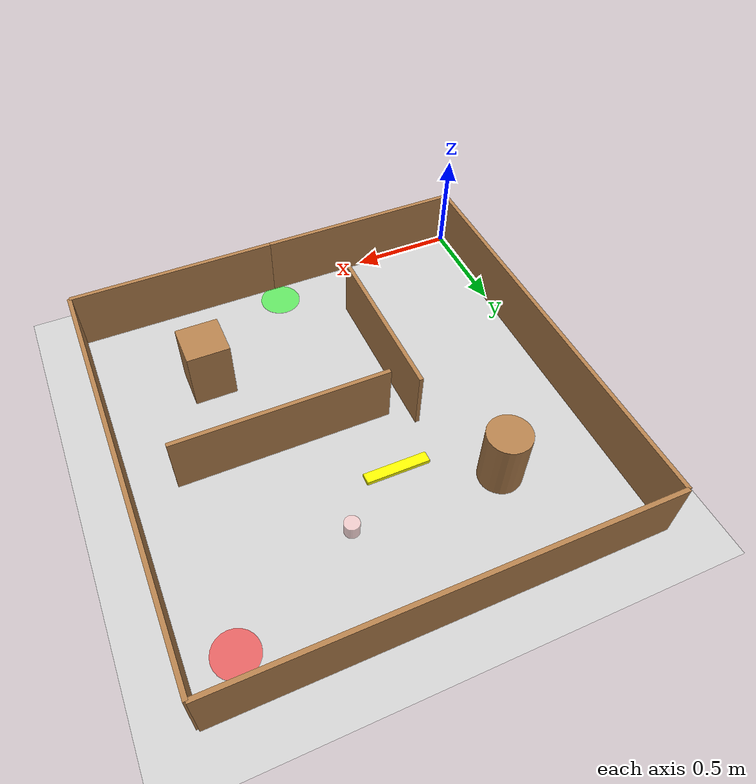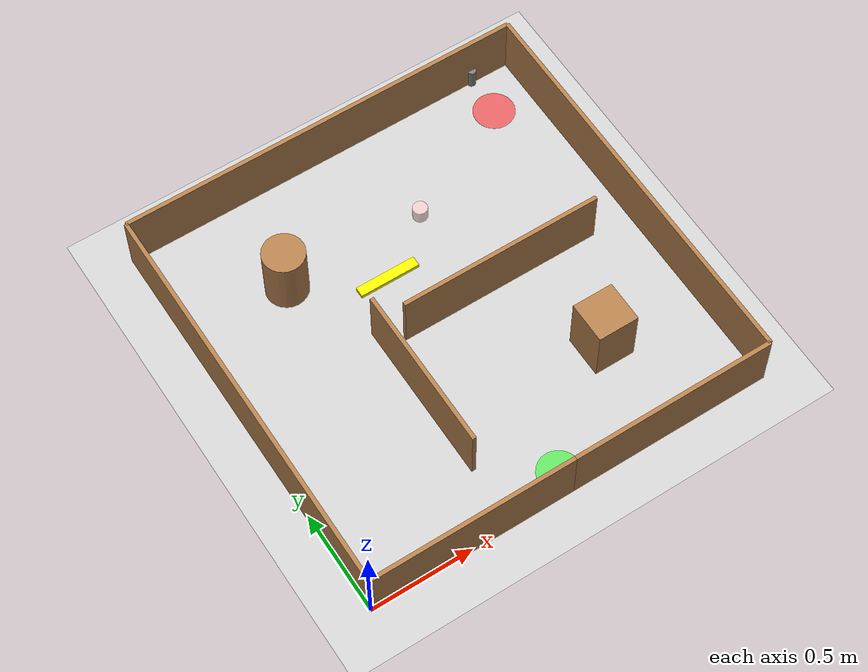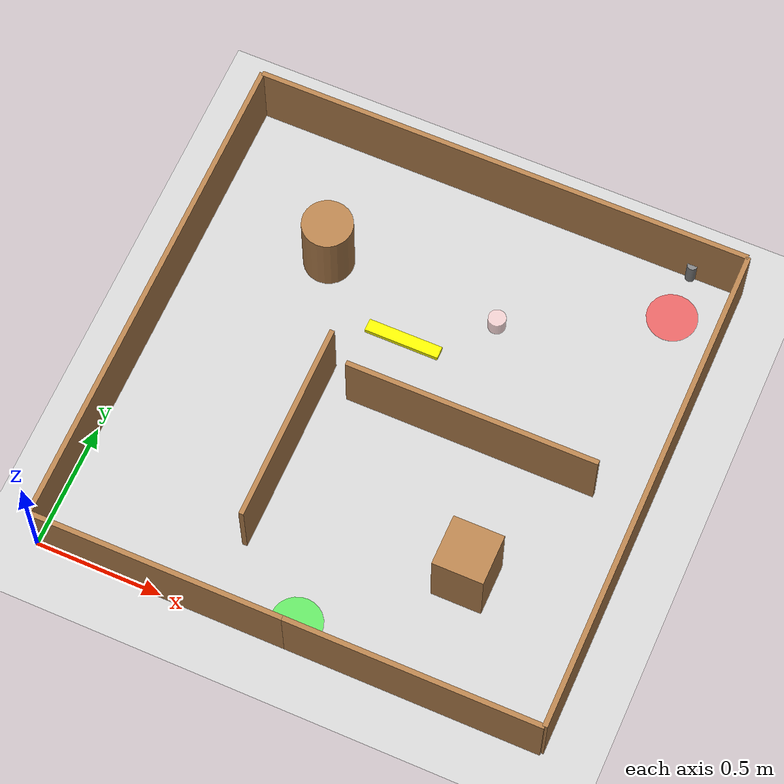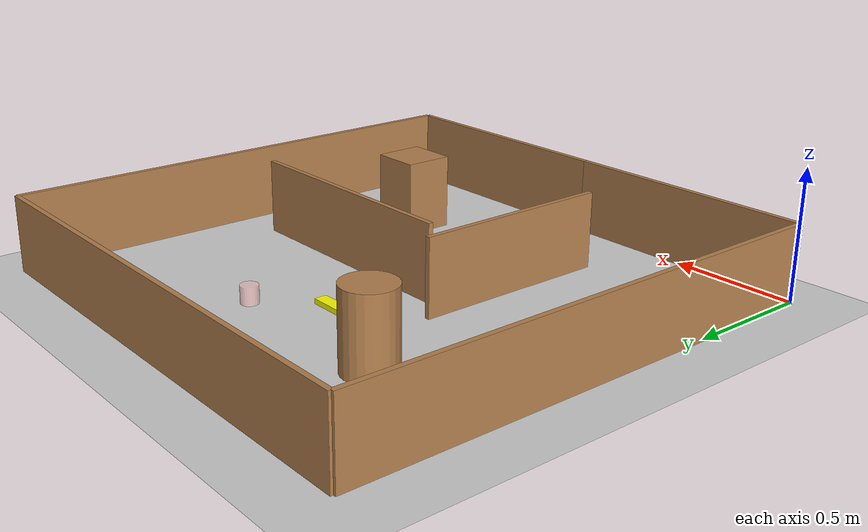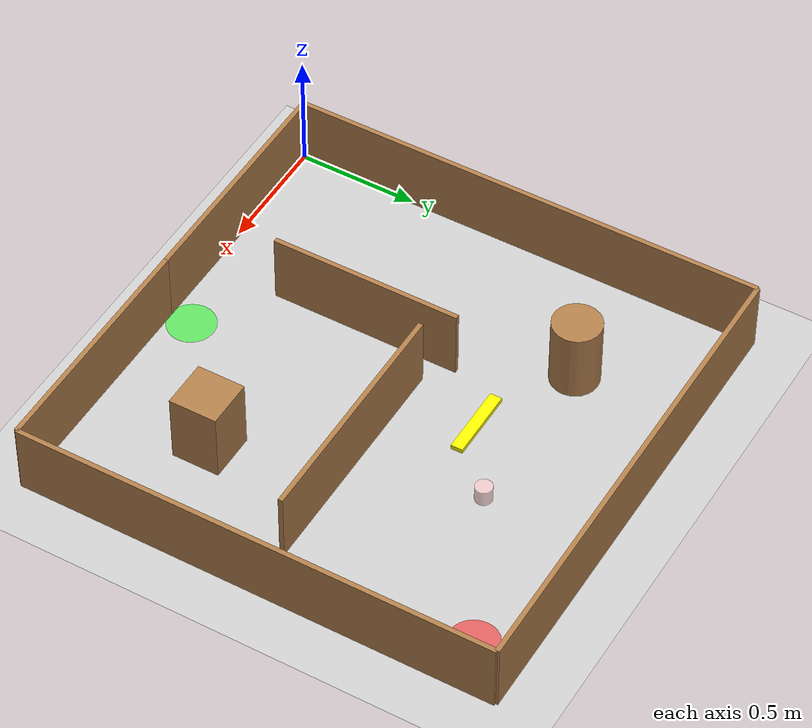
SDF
<?xml version="1.0" ?>
<sdf version="1.8">
  <world name="simple_maze">
    <!-- Physics configuration -->
    <physics name="1ms" type="ignored">
      <max_step_size>0.001</max_step_size>
      <real_time_factor>1.0</real_time_factor>
      <real_time_update_rate>1000</real_time_update_rate>
    </physics>

    <!-- Global light source -->
    <light type="directional" name="sun">
      <cast_shadows>true</cast_shadows>
      <pose>0 0 10 0 0 0</pose>
      <diffuse>0.8 0.8 0.8 1</diffuse>
      <specular>0.2 0.2 0.2 1</specular>
    </light>

    <!-- Ground Plane -->
    <model name="ground_plane">
      <static>true</static>
      <link name="link">
        <collision name="collision">
          <geometry>
            <plane>
              <normal>0 0 1</normal>
              <size>5 5</size>
            </plane>
          </geometry>
        </collision>
        <visual name="visual">
          <geometry>
            <plane>
              <normal>0 0 1</normal>
              <size>5 5</size>
            </plane>
          </geometry>
          <material>
            <ambient>0.8 0.8 0.8 1</ambient>
            <diffuse>0.8 0.8 0.8 1</diffuse>
            <specular>0.8 0.8 0.8 1</specular>
          </material>
        </visual>
      </link>
    </model>

    <!-- Outer boundary walls -->
    <!-- North Wall -->
    <model name="outer_wall_north">
      <static>true</static>
      <link name="link">
        <pose>1.0 2.0 0.15 0 0 0</pose>
        <collision name="collision">
          <geometry>
            <box>
              <size>2.0 0.02 0.3</size>
            </box>
          </geometry>
        </collision>
        <visual name="visual">
          <geometry>
            <box>
              <size>2.0 0.02 0.3</size>
            </box>
          </geometry>
          <material>
            <ambient>0.7 0.5 0.3 1</ambient>
            <diffuse>0.7 0.5 0.3 1</diffuse>
          </material>
        </visual>
      </link>
    </model>

    <!-- East Wall -->
    <model name="outer_wall_east">
      <static>true</static>
      <link name="link">
        <pose>2.0 1.0 0.15 0 0 0</pose>
        <collision name="collision">
          <geometry>
            <box>
              <size>0.02 2.0 0.3</size>
            </box>
          </geometry>
        </collision>
        <visual name="visual">
          <geometry>
            <box>
              <size>0.02 2.0 0.3</size>
            </box>
          </geometry>
          <material>
            <ambient>0.7 0.5 0.3 1</ambient>
            <diffuse>0.7 0.5 0.3 1</diffuse>
          </material>
        </visual>
      </link>
    </model>

    <!-- South Wall with Gap for Start -->
    <model name="outer_wall_south_left">
      <static>true</static>
      <link name="link">
        <pose>0.5 0.0 0.15 0 0 0</pose>
        <collision name="collision">
          <geometry>
            <box>
              <size>1.0 0.02 0.3</size>
            </box>
          </geometry>
        </collision>
        <visual name="visual">
          <geometry>
            <box>
              <size>1.0 0.02 0.3</size>
            </box>
          </geometry>
          <material>
            <ambient>0.7 0.5 0.3 1</ambient>
            <diffuse>0.7 0.5 0.3 1</diffuse>
          </material>
        </visual>
      </link>
    </model>

    <model name="outer_wall_south_right">
      <static>true</static>
      <link name="link">
        <pose>1.5 0.0 0.15 0 0 0</pose>
        <collision name="collision">
          <geometry>
            <box>
              <size>1.0 0.02 0.3</size>
            </box>
          </geometry>
        </collision>
        <visual name="visual">
          <geometry>
            <box>
              <size>1.0 0.02 0.3</size>
            </box>
          </geometry>
          <material>
            <ambient>0.7 0.5 0.3 1</ambient>
            <diffuse>0.7 0.5 0.3 1</diffuse>
          </material>
        </visual>
      </link>
    </model>

    <!-- West Wall -->
    <model name="outer_wall_west">
      <static>true</static>
      <link name="link">
        <pose>0.0 1.0 0.15 0 0 0</pose>
        <collision name="collision">
          <geometry>
            <box>
              <size>0.02 2.0 0.3</size>
            </box>
          </geometry>
        </collision>
        <visual name="visual">
          <geometry>
            <box>
              <size>0.02 2.0 0.3</size>
            </box>
          </geometry>
          <material>
            <ambient>0.7 0.5 0.3 1</ambient>
            <diffuse>0.7 0.5 0.3 1</diffuse>
          </material>
        </visual>
      </link>
    </model>

    <!-- Internal obstacles -->
    <!-- Obstacle 1 - Simple wall -->
    <model name="obstacle_1">
      <static>true</static>
      <link name="link">
        <pose>0.7 0.7 0.15 0 0 0</pose>
        <collision name="collision">
          <geometry>
            <box>
              <size>0.02 0.8 0.3</size>
            </box>
          </geometry>
        </collision>
        <visual name="visual">
          <geometry>
            <box>
              <size>0.02 0.8 0.3</size>
            </box>
          </geometry>
          <material>
            <ambient>0.7 0.5 0.3 1</ambient>
            <diffuse>0.7 0.5 0.3 1</diffuse>
          </material>
        </visual>
      </link>
    </model>

    <!-- Obstacle 2 - Horizontal wall -->
    <model name="obstacle_2">
      <static>true</static>
      <link name="link">
        <pose>1.3 1.0 0.15 0 0 0</pose>
        <collision name="collision">
          <geometry>
            <box>
              <size>1.0 0.02 0.3</size>
            </box>
          </geometry>
        </collision>
        <visual name="visual">
          <geometry>
            <box>
              <size>1.0 0.02 0.3</size>
            </box>
          </geometry>
          <material>
            <ambient>0.7 0.5 0.3 1</ambient>
            <diffuse>0.7 0.5 0.3 1</diffuse>
          </material>
        </visual>
      </link>
    </model>

    <!-- Obstacle 3 - Box obstacle -->
    <model name="obstacle_3">
      <static>true</static>
      <link name="link">
        <pose>1.5 0.5 0.15 0 0 0</pose>
        <collision name="collision">
          <geometry>
            <box>
              <size>0.2 0.2 0.3</size>
            </box>
          </geometry>
        </collision>
        <visual name="visual">
          <geometry>
            <box>
              <size>0.2 0.2 0.3</size>
            </box>
          </geometry>
          <material>
            <ambient>0.7 0.5 0.3 1</ambient>
            <diffuse>0.7 0.5 0.3 1</diffuse>
          </material>
        </visual>
      </link>
    </model>

    <!-- Obstacle 4 - Cylinder obstacle -->
    <model name="obstacle_4">
      <static>true</static>
      <link name="link">
        <pose>0.5 1.5 0.15 0 0 0</pose>
        <collision name="collision">
          <geometry>
            <cylinder>
              <radius>0.1</radius>
              <length>0.3</length>
            </cylinder>
          </geometry>
        </collision>
        <visual name="visual">
          <geometry>
            <cylinder>
              <radius>0.1</radius>
              <length>0.3</length>
            </cylinder>
          </geometry>
          <material>
            <ambient>0.7 0.5 0.3 1</ambient>
            <diffuse>0.7 0.5 0.3 1</diffuse>
          </material>
        </visual>
      </link>
    </model>

    <!-- Alcohol test zone -->
    <model name="alcohol_container">
      <static>true</static>
      <link name="link">
        <pose>1.2 1.5 0.035 0 0 0</pose>
        <collision name="collision">
          <geometry>
            <cylinder>
              <radius>0.035</radius>
              <length>0.07</length>
            </cylinder>
          </geometry>
        </collision>
        <visual name="visual">
          <geometry>
            <cylinder>
              <radius>0.035</radius>
              <length>0.07</length>
            </cylinder>
          </geometry>
          <material>
            <ambient>1.0 0.8 0.8 0.7</ambient>
            <diffuse>1.0 0.8 0.8 0.7</diffuse>
            <specular>1.0 1.0 1.0 0.5</specular>
          </material>
        </visual>
      </link>
    </model>

    <!-- Vibration test zone (speed bump) -->
    <model name="speed_bump">
      <static>true</static>
      <link name="link">
        <pose>0.9 1.3 0.01 0 0 0</pose>
        <collision name="collision">
          <geometry>
            <box>
              <size>0.3 0.05 0.02</size>
            </box>
          </geometry>
        </collision>
        <visual name="visual">
          <geometry>
            <box>
              <size>0.3 0.05 0.02</size>
            </box>
          </geometry>
          <material>
            <ambient>1 1 0 1</ambient>
            <diffuse>1 1 0 1</diffuse>
          </material>
        </visual>
      </link>
    </model>

    <!-- Magnetic test zone at the end/goal -->
    <model name="goal_magnet">
      <static>true</static>
      <link name="link">
        <pose>1.8 1.99 0.05 0 0 0</pose>
        <visual name="visual">
          <geometry>
            <cylinder>
              <radius>0.02</radius>
              <length>0.1</length>
            </cylinder>
          </geometry>
          <material>
            <ambient>0.5 0.5 0.5 1</ambient>
            <diffuse>0.5 0.5 0.5 1</diffuse>
          </material>
        </visual>
        <!-- Adding a magnetic field effect -->
        <sensor name="magnet" type="magnetometer">
          <always_on>1</always_on>
          <update_rate>30</update_rate>
          <magnetometer>
            <x>
              <noise type="gaussian">
                <mean>5.0</mean>
                <stddev>0.1</stddev>
              </noise>
            </x>
          </magnetometer>
        </sensor>
      </link>
    </model>

    <!-- Start point marker (green circle) -->
    <model name="start_point">
      <static>true</static>
      <pose>1.0 0.1 0.001 0 0 0</pose>
      <link name="link">
        <visual name="visual">
          <transparency>0.5</transparency>
          <geometry>
            <cylinder>
              <radius>0.1</radius>
              <length>0.002</length>
            </cylinder>
          </geometry>
          <material>
            <ambient>0.0 1.0 0.0 0.5</ambient>
            <diffuse>0.0 1.0 0.0 0.5</diffuse>
          </material>
        </visual>
      </link>
    </model>

    <!-- End point marker (red circle) -->
    <model name="end_point">
      <static>true</static>
      <pose>1.8 1.8 0.001 0 0 0</pose>
      <link name="link">
        <visual name="visual">
          <transparency>0.5</transparency>
          <geometry>
            <cylinder>
              <radius>0.1</radius>
              <length>0.002</length>
            </cylinder>
          </geometry>
          <material>
            <ambient>1.0 0.0 0.0 0.5</ambient>
            <diffuse>1.0 0.0 0.0 0.5</diffuse>
          </material>
        </visual>
      </link>
    </model>
  </world>
</sdf>
